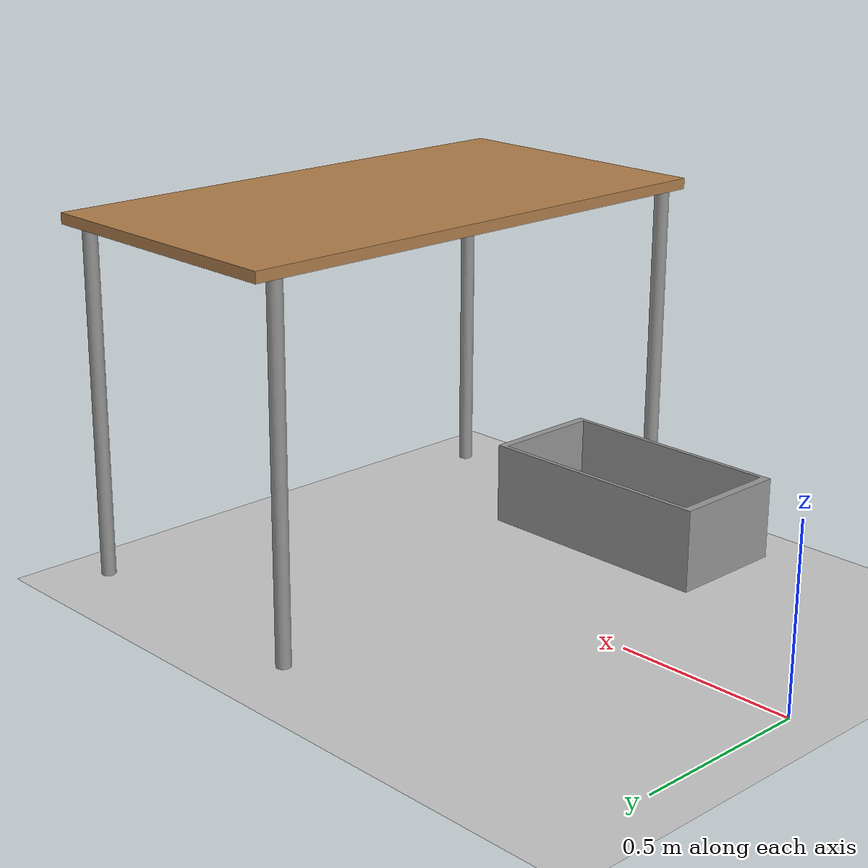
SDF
<sdf version="1.5">
 <world name="default">
  <scene><shadows>0</shadows></scene>
  <include><uri>model://sun</uri></include>
  <include><uri>model://ground_plane</uri></include>
  <include><pose>0.5 0.0 0.3 0 0 0</pose><uri>model://dropbox</uri><name>DropBox</name></include>
  <include><pose>1.38 0 0 0 0 1.56</pose><uri>model://table</uri></include>
 </world>
</sdf>

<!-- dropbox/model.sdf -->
<sdf version='1.6'>
  <model name='dropbox'>
    <link name='link_0'>
      <pose frame=''>0 -0 0 0 0 -1.56873</pose>
      <inertial>
        <mass>1</mass>
        <inertia>
          <ixx>0.166667</ixx>
          <ixy>0</ixy>
          <ixz>0</ixz>
          <iyy>0.166667</iyy>
          <iyz>0</iyz>
          <izz>0.166667</izz>
        </inertia>
      </inertial>
      <visual name='visual'>
        <pose frame=''>0 0 0 0 -0 0</pose>
        <geometry>
          <mesh>
            <uri>model://dropbox/meshes/dropbox.dae</uri>
            <scale>1 1 1</scale>
          </mesh>
        </geometry>
        <material>
          <lighting>1</lighting>
          <script>
            <uri>file://media/materials/scripts/gazebo.material</uri>
            <name>Gazebo/Grey</name>
          </script>
          <ambient>0.3 0.3 0.3 1</ambient>
          <diffuse>0.7 0.7 0.7 1</diffuse>
          <specular>0.01 0.01 0.01 1</specular>
          <emissive>0 0 0 1</emissive>
        </material>
        <transparency>0</transparency>
        <cast_shadows>1</cast_shadows>
      </visual>
      <collision name='collision'>
        <laser_retro>0</laser_retro>
        <max_contacts>10</max_contacts>
        <pose frame=''>0 0 0 0 -0 0</pose>
        <geometry>
          <mesh>
            <uri>model://dropbox/meshes/dropbox.dae</uri>
            <scale>1 1 1</scale>
          </mesh>
        </geometry>
        <surface>
          <friction>
            <ode>
              <mu>1</mu>
              <mu2>1</mu2>
              <fdir1>0 0 0</fdir1>
              <slip1>0</slip1>
              <slip2>0</slip2>
            </ode>
            <torsional>
              <coefficient>1</coefficient>
              <patch_radius>0</patch_radius>
              <surface_radius>0</surface_radius>
              <use_patch_radius>1</use_patch_radius>
              <ode>
                <slip>0</slip>
              </ode>
            </torsional>
          </friction>
          <bounce>
            <restitution_coefficient>0</restitution_coefficient>
            <threshold>1e+06</threshold>
          </bounce>
          <contact>
            <collide_without_contact>0</collide_without_contact>
            <collide_without_contact_bitmask>1</collide_without_contact_bitmask>
            <collide_bitmask>1</collide_bitmask>
            <ode>
              <soft_cfm>0</soft_cfm>
              <soft_erp>0.2</soft_erp>
              <kp>1e+13</kp>
              <kd>1</kd>
              <max_vel>0.01</max_vel>
              <min_depth>0</min_depth>
            </ode>
            <bullet>
              <split_impulse>1</split_impulse>
              <split_impulse_penetration_threshold>-0.01</split_impulse_penetration_threshold>
              <soft_cfm>0</soft_cfm>
              <soft_erp>0.2</soft_erp>
              <kp>1e+13</kp>
              <kd>1</kd>
            </bullet>
          </contact>
        </surface>
      </collision>
    </link>
    <static>1</static>
    <allow_auto_disable>1</allow_auto_disable>
  </model>
</sdf>

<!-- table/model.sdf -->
<sdf version="1.5">
  <model name="table">
    <static>true</static>
    <link name="link">
      <collision name="surface">
        <pose>0 0 1.0 0 0 0</pose>
        <geometry>
          <box>
            <size>1.5 0.8 0.03</size>
          </box>
        </geometry>
        <surface>
          <friction>
            <ode>
              <mu>0.6</mu>
              <mu2>0.6</mu2>
            </ode>
          </friction>
        </surface>
      </collision>
      <visual name="visual1">
        <pose>0 0 1.0 0 0 0</pose>
        <geometry>
          <box>
            <size>1.5 0.8 0.03</size>
          </box>
        </geometry>
        <material>
          <script>
            <uri>model://media/materials/scripts/gazebo.material</uri>
            <name>Gazebo/Wood</name>
          </script>
        </material>
      </visual>
      <collision name="front_left_leg">
        <pose>0.68 0.38 0.5 0 0 0</pose>
        <geometry>
          <cylinder>
            <radius>0.02</radius>
            <length>1.0</length>
          </cylinder>
        </geometry>
      </collision>
      <visual name="front_left_leg">
        <pose>0.68 0.38 0.5 0 0 0</pose>
        <geometry>
          <cylinder>
            <radius>0.02</radius>
            <length>1.0</length>
          </cylinder>
        </geometry>
        <material>
          <script>
            <uri>model://media/materials/scripts/gazebo.material</uri>
            <name>Gazebo/Grey</name>
          </script>
        </material>
      </visual>
      <collision name="front_right_leg">
        <pose>0.68 -0.38 0.5 0 0 0</pose>
        <geometry>
          <cylinder>
            <radius>0.02</radius>
            <length>1.0</length>
          </cylinder>
        </geometry>
      </collision>
      <visual name="front_right_leg">
        <pose>0.68 -0.38 0.5 0 0 0</pose>
        <geometry>
          <cylinder>
            <radius>0.02</radius>
            <length>1.0</length>
          </cylinder>
        </geometry>
        <material>
          <script>
            <uri>model://media/materials/scripts/gazebo.material</uri>
            <name>Gazebo/Grey</name>
          </script>
        </material>
      </visual>
      <collision name="back_right_leg">
        <pose>-0.68 -0.38 0.5 0 0 0</pose>
        <geometry>
          <cylinder>
            <radius>0.02</radius>
            <length>1.0</length>
          </cylinder>
        </geometry>
      </collision>
      <visual name="back_right_leg">
        <pose>-0.68 -0.38 0.5 0 0 0</pose>
        <geometry>
          <cylinder>
            <radius>0.02</radius>
            <length>1.0</length>
          </cylinder>
        </geometry>
        <material>
          <script>
            <uri>model://media/materials/scripts/gazebo.material</uri>
            <name>Gazebo/Grey</name>
          </script>
        </material>
      </visual>
      <collision name="back_left_leg">
        <pose>-0.68 0.38 0.5 0 0 0</pose>
        <geometry>
          <cylinder>
            <radius>0.02</radius>
            <length>1.0</length>
          </cylinder>
        </geometry>
      </collision>
      <visual name="back_left_leg">
        <pose>-0.68 0.38 0.5 0 0 0</pose>
        <geometry>
          <cylinder>
            <radius>0.02</radius>
            <length>1.0</length>
          </cylinder>
        </geometry>
        <material>
          <script>
            <uri>model://media/materials/scripts/gazebo.material</uri>
            <name>Gazebo/Grey</name>
          </script>
        </material>
      </visual>
    </link>
  </model>
</sdf>
